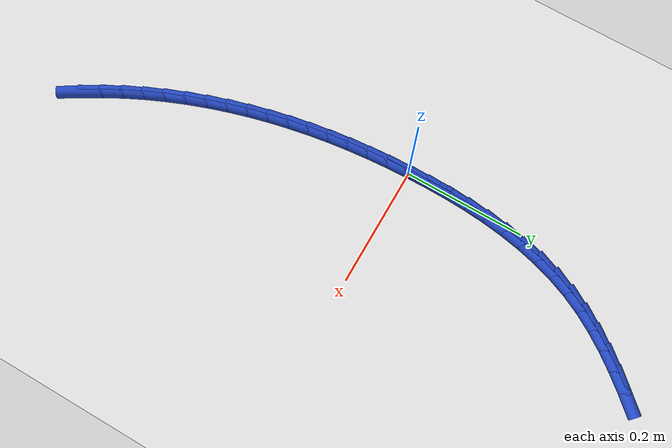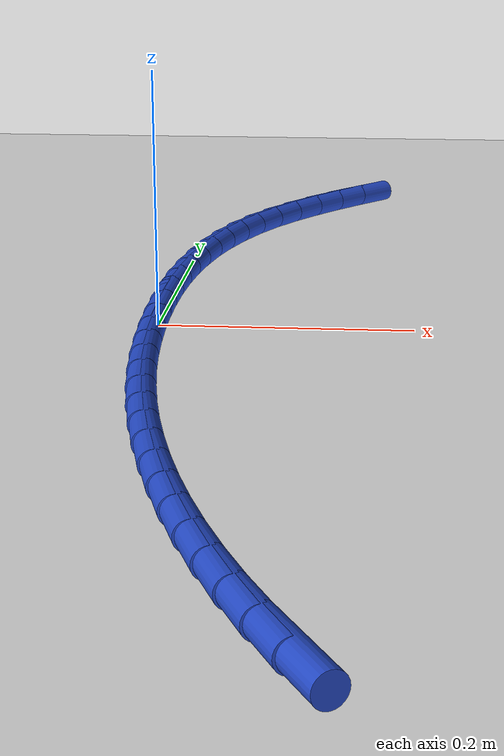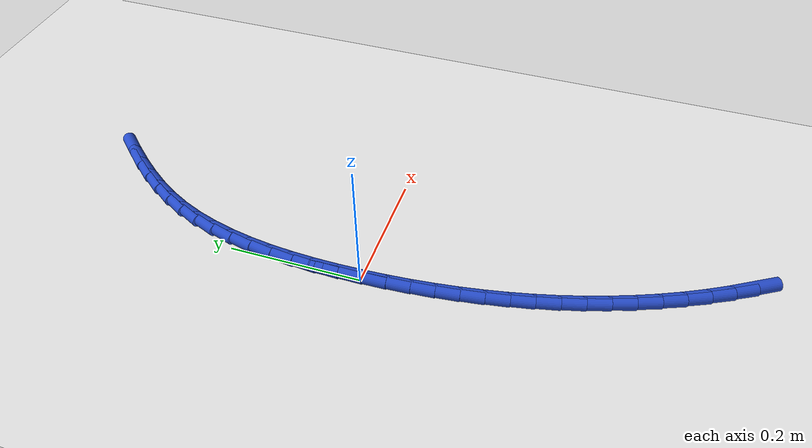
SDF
<sdf version="1.6">
 <world name="default">
  <model name="ground_plane">
   <static>1</static>
   <link name="link">
    <collision name="collision">
     <geometry><plane><normal>0 0 1</normal><size>100 100</size></plane></geometry>
     <surface><friction><ode><mu>100</mu><mu2>50</mu2></ode></friction></surface>
    </collision>
    <visual name="visual">
     <cast_shadows>0</cast_shadows>
     <geometry><plane><normal>0 0 1</normal><size>100 100</size></plane></geometry>
     <material>
      <script><uri>file://media/materials/scripts/gazebo.material</uri><name>Gazebo/WhiteGlow</name></script>
     </material>
    </visual>
   </link>
  </model>
  <model name="line">
   <link name="link_0">
    <pose>4.336808689942018e-18 -4.85722573273506e-17 0.01 0 1.57 -1.5551713385921593</pose>
    <collision name="collision">
     <geometry><cylinder><radius>0.01</radius><length>0.08</length></cylinder></geometry>
    </collision>
    <visual name="visual">
     <material>
      <script><name>Gazebo/Blue</name><uri>file://media/materials/scripts/gazebo.material</uri></script>
     </material>
     <geometry><cylinder><radius>0.01</radius><length>0.08</length></cylinder></geometry>
    </visual>
   </link>
   <link name="link_1">
    <pose>-0.0005454513729576565 0.03490607328972473 0.01 0 1.57 1.5572508770001114</pose>
    <collision name="collision">
     <geometry><cylinder><radius>0.01</radius><length>0.08</length></cylinder></geometry>
    </collision>
    <visual name="visual">
     <material>
      <script><name>Gazebo/Blue</name><uri>file://media/materials/scripts/gazebo.material</uri></script>
     </material>
     <geometry><cylinder><radius>0.01</radius><length>0.08</length></cylinder></geometry>
    </visual>
   </link>
   <link name="link_2">
    <pose>-7.11422814879902e-05 0.0699200513916747 0.01 0 1.57 1.5231089749024698</pose>
    <collision name="collision">
     <geometry><cylinder><radius>0.01</radius><length>0.08</length></cylinder></geometry>
    </collision>
    <visual name="visual">
     <material>
      <script><name>Gazebo/Blue</name><uri>file://media/materials/scripts/gazebo.material</uri></script>
     </material>
     <geometry><cylinder><radius>0.01</radius><length>0.08</length></cylinder></geometry>
    </visual>
   </link>
   <link name="link_3">
    <pose>0.0015967305746672651 0.10486869719056198 0.01 0 1.57 1.483572701808403</pose>
    <collision name="collision">
     <geometry><cylinder><radius>0.01</radius><length>0.08</length></cylinder></geometry>
    </collision>
    <visual name="visual">
     <material>
      <script><name>Gazebo/Blue</name><uri>file://media/materials/scripts/gazebo.material</uri></script>
     </material>
     <geometry><cylinder><radius>0.01</radius><length>0.08</length></cylinder></geometry>
    </visual>
   </link>
   <link name="link_4">
    <pose>0.004631970495766368 0.13957877357109874 0.01 0 1.57 1.4381500426747797</pose>
    <collision name="collision">
     <geometry><cylinder><radius>0.01</radius><length>0.08</length></cylinder></geometry>
    </collision>
    <visual name="visual">
     <material>
      <script><name>Gazebo/Blue</name><uri>file://media/materials/scripts/gazebo.material</uri></script>
     </material>
     <geometry><cylinder><radius>0.01</radius><length>0.08</length></cylinder></geometry>
    </visual>
   </link>
   <link name="link_5">
    <pose>0.009208380782067583 0.1738770434179972 0.01 0 1.57 1.3863037366777013</pose>
    <collision name="collision">
     <geometry><cylinder><radius>0.01</radius><length>0.08</length></cylinder></geometry>
    </collision>
    <visual name="visual">
     <material>
      <script><name>Gazebo/Blue</name><uri>file://media/materials/scripts/gazebo.material</uri></script>
     </material>
     <geometry><cylinder><radius>0.01</radius><length>0.08</length></cylinder></geometry>
    </visual>
   </link>
   <link name="link_6">
    <pose>0.01549976473382917 0.2075902696159695 0.01 0 1.57 1.3274912468184805</pose>
    <collision name="collision">
     <geometry><cylinder><radius>0.01</radius><length>0.08</length></cylinder></geometry>
    </collision>
    <visual name="visual">
     <material>
      <script><name>Gazebo/Blue</name><uri>file://media/materials/scripts/gazebo.material</uri></script>
     </material>
     <geometry><cylinder><radius>0.01</radius><length>0.08</length></cylinder></geometry>
    </visual>
   </link>
   <link name="link_7">
    <pose>0.023679925651309403 0.2405452150497278 0.01 0 1.57 1.2612280985428281</pose>
    <collision name="collision">
     <geometry><cylinder><radius>0.01</radius><length>0.08</length></cylinder></geometry>
    </collision>
    <visual name="visual">
     <material>
      <script><name>Gazebo/Blue</name><uri>file://media/materials/scripts/gazebo.material</uri></script>
     </material>
     <geometry><cylinder><radius>0.01</radius><length>0.08</length></cylinder></geometry>
    </visual>
   </link>
   <link name="link_8">
    <pose>0.03392266683476651 0.27256864260398433 0.01 0 1.57 1.1871806663778266</pose>
    <collision name="collision">
     <geometry><cylinder><radius>0.01</radius><length>0.08</length></cylinder></geometry>
    </collision>
    <visual name="visual">
     <material>
      <script><name>Gazebo/Blue</name><uri>file://media/materials/scripts/gazebo.material</uri></script>
     </material>
     <geometry><cylinder><radius>0.01</radius><length>0.08</length></cylinder></geometry>
    </visual>
   </link>
   <link name="link_9">
    <pose>0.0464017915844588 0.30348731516345123 0.01 0 1.57 1.1068186664397115</pose>
    <collision name="collision">
     <geometry><cylinder><radius>0.01</radius><length>0.08</length></cylinder></geometry>
    </collision>
    <visual name="visual">
     <material>
      <script><name>Gazebo/Blue</name><uri>file://media/materials/scripts/gazebo.material</uri></script>
     </material>
     <geometry><cylinder><radius>0.01</radius><length>0.08</length></cylinder></geometry>
    </visual>
   </link>
   <link name="link_10">
    <pose>0.06124946907298046 0.33315818382276774 0.01 0 1.57 1.031359643664135</pose>
    <collision name="collision">
     <geometry><cylinder><radius>0.01</radius><length>0.08</length></cylinder></geometry>
    </collision>
    <visual name="visual">
     <material>
      <script><name>Gazebo/Blue</name><uri>file://media/materials/scripts/gazebo.material</uri></script>
     </material>
     <geometry><cylinder><radius>0.01</radius><length>0.08</length></cylinder></geometry>
    </visual>
   </link>
   <link name="link_11">
    <pose>0.07830627582986859 0.3616496286271902 0.01 0 1.57 0.9661470551166617</pose>
    <collision name="collision">
     <geometry><cylinder><radius>0.01</radius><length>0.08</length></cylinder></geometry>
    </collision>
    <visual name="visual">
     <material>
      <script><name>Gazebo/Blue</name><uri>file://media/materials/scripts/gazebo.material</uri></script>
     </material>
     <geometry><cylinder><radius>0.01</radius><length>0.08</length></cylinder></geometry>
    </visual>
   </link>
   <link name="link_12">
    <pose>0.09728814360428557 0.38912040746840487 0.01 0 1.57 0.9114803288456177</pose>
    <collision name="collision">
     <geometry><cylinder><radius>0.01</radius><length>0.08</length></cylinder></geometry>
    </collision>
    <visual name="visual">
     <material>
      <script><name>Gazebo/Blue</name><uri>file://media/materials/scripts/gazebo.material</uri></script>
     </material>
     <geometry><cylinder><radius>0.01</radius><length>0.08</length></cylinder></geometry>
    </visual>
   </link>
   <link name="link_13">
    <pose>0.11791053476553841 0.4157296185775842 0.01 0 1.57 0.867252139046164</pose>
    <collision name="collision">
     <geometry><cylinder><radius>0.01</radius><length>0.08</length></cylinder></geometry>
    </collision>
    <visual name="visual">
     <material>
      <script><name>Gazebo/Blue</name><uri>file://media/materials/scripts/gazebo.material</uri></script>
     </material>
     <geometry><cylinder><radius>0.01</radius><length>0.08</length></cylinder></geometry>
    </visual>
   </link>
   <link name="link_14">
    <pose>0.13988891168293402 0.44163636018590086 0.01 0 1.57 0.8331493308550025</pose>
    <collision name="collision">
     <geometry><cylinder><radius>0.01</radius><length>0.08</length></cylinder></geometry>
    </collision>
    <visual name="visual">
     <material>
      <script><name>Gazebo/Blue</name><uri>file://media/materials/scripts/gazebo.material</uri></script>
     </material>
     <geometry><cylinder><radius>0.01</radius><length>0.08</length></cylinder></geometry>
    </visual>
   </link>
   <link name="link_184">
    <pose>0.14480343703042656 -0.5218732181576997 0.01 0 1.57 -1.0346124444596396</pose>
    <collision name="collision">
     <geometry><cylinder><radius>0.01</radius><length>0.08</length></cylinder></geometry>
    </collision>
    <visual name="visual">
     <material>
      <script><name>Gazebo/Blue</name><uri>file://media/materials/scripts/gazebo.material</uri></script>
     </material>
     <geometry><cylinder><radius>0.01</radius><length>0.08</length></cylinder></geometry>
    </visual>
   </link>
   <link name="link_185">
    <pose>0.1273170160507291 -0.4924473880853371 0.01 0 1.57 -1.0761477754247977</pose>
    <collision name="collision">
     <geometry><cylinder><radius>0.01</radius><length>0.08</length></cylinder></geometry>
    </collision>
    <visual name="visual">
     <material>
      <script><name>Gazebo/Blue</name><uri>file://media/materials/scripts/gazebo.material</uri></script>
     </material>
     <geometry><cylinder><radius>0.01</radius><length>0.08</length></cylinder></geometry>
    </visual>
   </link>
   <link name="link_186">
    <pose>0.11102267208446934 -0.4622376622653643 0.01 0 1.57 -1.1158332692513504</pose>
    <collision name="collision">
     <geometry><cylinder><radius>0.01</radius><length>0.08</length></cylinder></geometry>
    </collision>
    <visual name="visual">
     <material>
      <script><name>Gazebo/Blue</name><uri>file://media/materials/scripts/gazebo.material</uri></script>
     </material>
     <geometry><cylinder><radius>0.01</radius><length>0.08</length></cylinder></geometry>
    </visual>
   </link>
   <link name="link_187">
    <pose>0.09591122574003051 -0.4313469730950072 0.01 0 1.57 -1.1538562642759767</pose>
    <collision name="collision">
     <geometry><cylinder><radius>0.01</radius><length>0.08</length></cylinder></geometry>
    </collision>
    <visual name="visual">
     <material>
      <script><name>Gazebo/Blue</name><uri>file://media/materials/scripts/gazebo.material</uri></script>
     </material>
     <geometry><cylinder><radius>0.01</radius><length>0.08</length></cylinder></geometry>
    </visual>
   </link>
   <link name="link_188">
    <pose>0.0819734976257959 -0.3998782529714924 0.01 0 1.57 -1.190407030217453</pose>
    <collision name="collision">
     <geometry><cylinder><radius>0.01</radius><length>0.08</length></cylinder></geometry>
    </collision>
    <visual name="visual">
     <material>
      <script><name>Gazebo/Blue</name><uri>file://media/materials/scripts/gazebo.material</uri></script>
     </material>
     <geometry><cylinder><radius>0.01</radius><length>0.08</length></cylinder></geometry>
    </visual>
   </link>
   <link name="link_189">
    <pose>0.06920030835014881 -0.36793443429204603 0.01 0 1.57 -1.2256770587772245</pose>
    <collision name="collision">
     <geometry><cylinder><radius>0.01</radius><length>0.08</length></cylinder></geometry>
    </collision>
    <visual name="visual">
     <material>
      <script><name>Gazebo/Blue</name><uri>file://media/materials/scripts/gazebo.material</uri></script>
     </material>
     <geometry><cylinder><radius>0.01</radius><length>0.08</length></cylinder></geometry>
    </visual>
   </link>
   <link name="link_190">
    <pose>0.0575824785214725 -0.3356184494538942 0.01 0 1.57 -1.2598588110166458</pose>
    <collision name="collision">
     <geometry><cylinder><radius>0.01</radius><length>0.08</length></cylinder></geometry>
    </collision>
    <visual name="visual">
     <material>
      <script><name>Gazebo/Blue</name><uri>file://media/materials/scripts/gazebo.material</uri></script>
     </material>
     <geometry><cylinder><radius>0.01</radius><length>0.08</length></cylinder></geometry>
    </visual>
   </link>
   <link name="link_191">
    <pose>0.04711080550463668 -0.30303311473848177 0.01 0 1.57 -1.2932186505053074</pose>
    <collision name="collision">
     <geometry><cylinder><radius>0.01</radius><length>0.08</length></cylinder></geometry>
    </collision>
    <visual name="visual">
     <material>
      <script><name>Gazebo/Blue</name><uri>file://media/materials/scripts/gazebo.material</uri></script>
     </material>
     <geometry><cylinder><radius>0.01</radius><length>0.08</length></cylinder></geometry>
    </visual>
   </link>
   <link name="link_192">
    <pose>0.037769914301954234 -0.2702504116440238 0.01 0 1.57 -1.3259641293860311</pose>
    <collision name="collision">
     <geometry><cylinder><radius>0.01</radius><length>0.08</length></cylinder></geometry>
    </collision>
    <visual name="visual">
     <material>
      <script><name>Gazebo/Blue</name><uri>file://media/materials/scripts/gazebo.material</uri></script>
     </material>
     <geometry><cylinder><radius>0.01</radius><length>0.08</length></cylinder></geometry>
    </visual>
   </link>
   <link name="link_193">
    <pose>0.029529990357927728 -0.2372701871123311 0.01 0 1.57 -1.358001729554115</pose>
    <collision name="collision">
     <geometry><cylinder><radius>0.01</radius><length>0.08</length></cylinder></geometry>
    </collision>
    <visual name="visual">
     <material>
      <script><name>Gazebo/Blue</name><uri>file://media/materials/scripts/gazebo.material</uri></script>
     </material>
     <geometry><cylinder><radius>0.01</radius><length>0.08</length></cylinder></geometry>
    </visual>
   </link>
   <link name="link_194">
    <pose>0.022359157410746486 -0.20408198858211948 0.01 0 1.57 -1.3892138827115112</pose>
    <collision name="collision">
     <geometry><cylinder><radius>0.01</radius><length>0.08</length></cylinder></geometry>
    </collision>
    <visual name="visual">
     <material>
      <script><name>Gazebo/Blue</name><uri>file://media/materials/scripts/gazebo.material</uri></script>
     </material>
     <geometry><cylinder><radius>0.01</radius><length>0.08</length></cylinder></geometry>
    </visual>
   </link>
   <link name="link_195">
    <pose>0.01622553919859962 -0.17067536349210408 0.01 0 1.57 -1.419495259914471</pose>
    <collision name="collision">
     <geometry><cylinder><radius>0.01</radius><length>0.08</length></cylinder></geometry>
    </collision>
    <visual name="visual">
     <material>
      <script><name>Gazebo/Blue</name><uri>file://media/materials/scripts/gazebo.material</uri></script>
     </material>
     <geometry><cylinder><radius>0.01</radius><length>0.08</length></cylinder></geometry>
    </visual>
   </link>
   <link name="link_196">
    <pose>0.011097259459676247 -0.13703985928099996 0.01 0 1.57 -1.4487538397333817</pose>
    <collision name="collision">
     <geometry><cylinder><radius>0.01</radius><length>0.08</length></cylinder></geometry>
    </collision>
    <visual name="visual">
     <material>
      <script><name>Gazebo/Blue</name><uri>file://media/materials/scripts/gazebo.material</uri></script>
     </material>
     <geometry><cylinder><radius>0.01</radius><length>0.08</length></cylinder></geometry>
    </visual>
   </link>
   <link name="link_197">
    <pose>0.006942441932165483 -0.1031650233875224 0.01 0 1.57 -1.4769114675511448</pose>
    <collision name="collision">
     <geometry><cylinder><radius>0.01</radius><length>0.08</length></cylinder></geometry>
    </collision>
    <visual name="visual">
     <material>
      <script><name>Gazebo/Blue</name><uri>file://media/materials/scripts/gazebo.material</uri></script>
     </material>
     <geometry><cylinder><radius>0.01</radius><length>0.08</length></cylinder></geometry>
    </visual>
   </link>
   <link name="link_198">
    <pose>0.003729210354256443 -0.0690404032503864 0.01 0 1.57 -1.503903941704258</pose>
    <collision name="collision">
     <geometry><cylinder><radius>0.01</radius><length>0.08</length></cylinder></geometry>
    </collision>
    <visual name="visual">
     <material>
      <script><name>Gazebo/Blue</name><uri>file://media/materials/scripts/gazebo.material</uri></script>
     </material>
     <geometry><cylinder><radius>0.01</radius><length>0.08</length></cylinder></geometry>
    </visual>
   </link>
   <link name="link_199">
    <pose>0.00142568846413824 -0.0346555463083072 0.01 0 1.57 -1.5296806858123404</pose>
    <collision name="collision">
     <geometry><cylinder><radius>0.01</radius><length>0.08</length></cylinder></geometry>
    </collision>
    <visual name="visual">
     <material>
      <script><name>Gazebo/Blue</name><uri>file://media/materials/scripts/gazebo.material</uri></script>
     </material>
     <geometry><cylinder><radius>0.01</radius><length>0.08</length></cylinder></geometry>
    </visual>
   </link>
   <link name="link_200">
    <pose>-1.214306433183765e-17 1.0408340855860843e-16 0.01 0 1.57 -1.5542040815721023</pose>
    <collision name="collision">
     <geometry><cylinder><radius>0.01</radius><length>0.08</length></cylinder></geometry>
    </collision>
    <visual name="visual">
     <material>
      <script><name>Gazebo/Blue</name><uri>file://media/materials/scripts/gazebo.material</uri></script>
     </material>
     <geometry><cylinder><radius>0.01</radius><length>0.08</length></cylinder></geometry>
    </visual>
   </link>
   <link name="link_201">
    <pose>-0.0005797312999691975 0.034936688235821155 0.01 0 1.57 -1.5542040815721019</pose>
    <collision name="collision">
     <geometry><cylinder><radius>0.01</radius><length>0.08</length></cylinder></geometry>
    </collision>
    <visual name="visual">
     <material>
      <script><name>Gazebo/Blue</name><uri>file://media/materials/scripts/gazebo.material</uri></script>
     </material>
     <geometry><cylinder><radius>0.01</radius><length>0.08</length></cylinder></geometry>
    </visual>
   </link>
  </model>
 </world>
</sdf>
